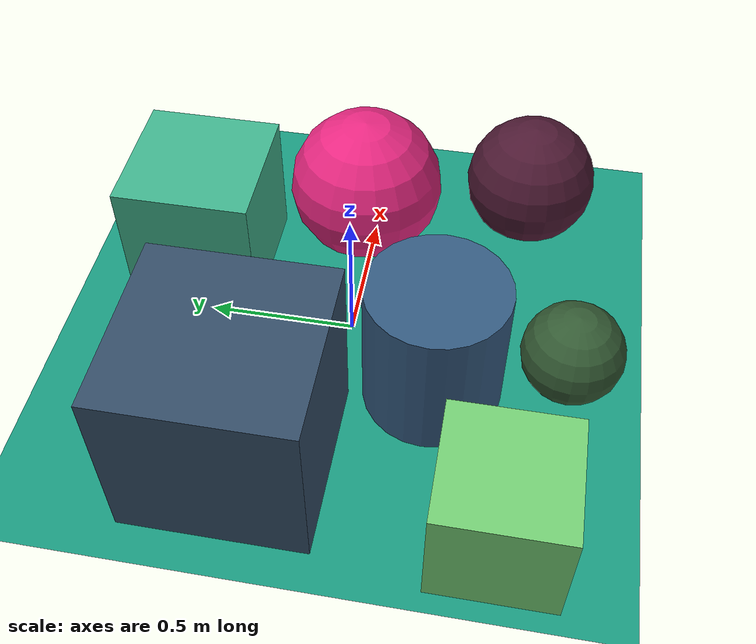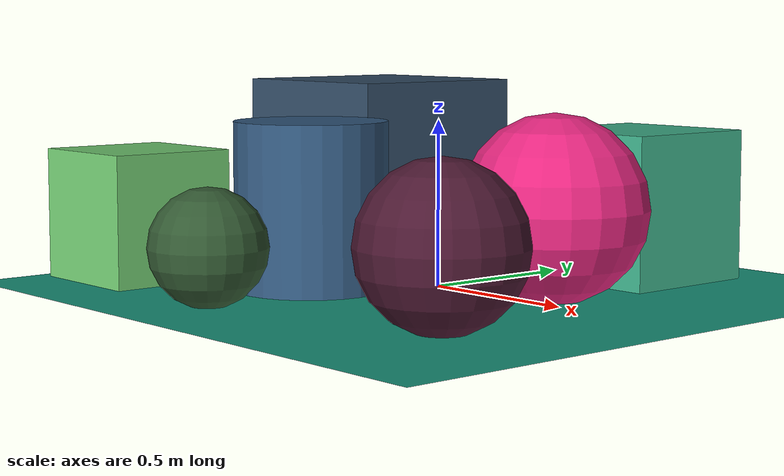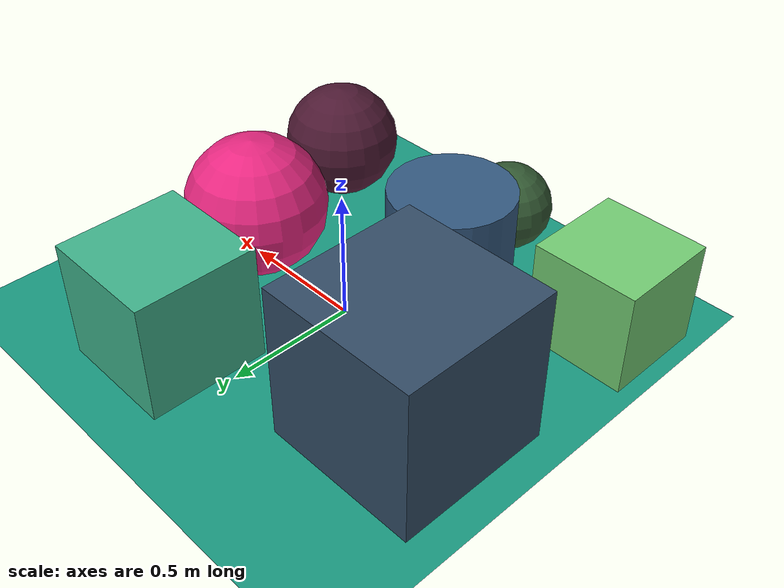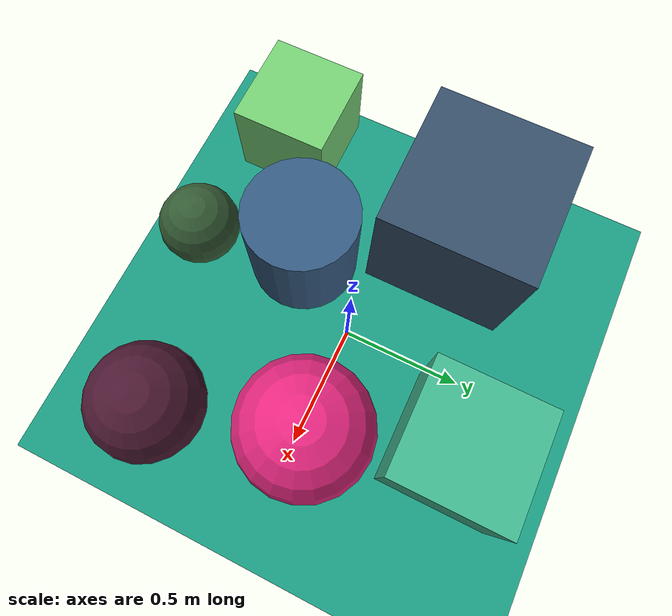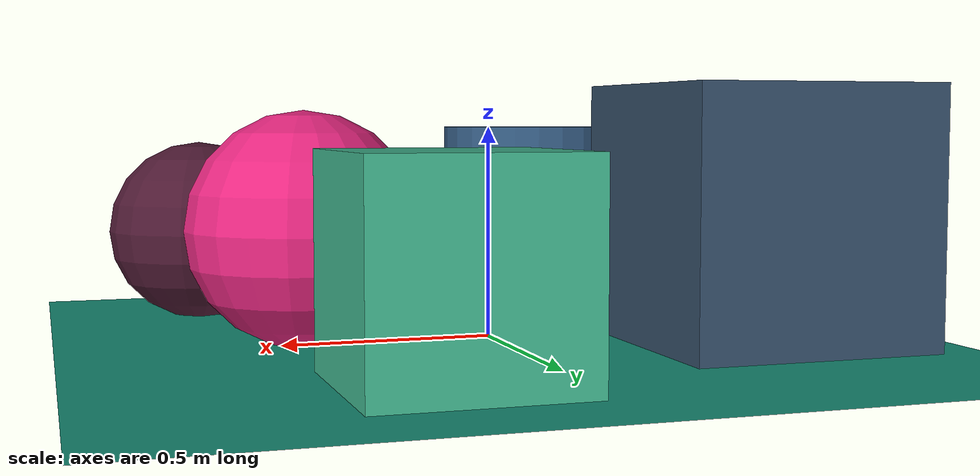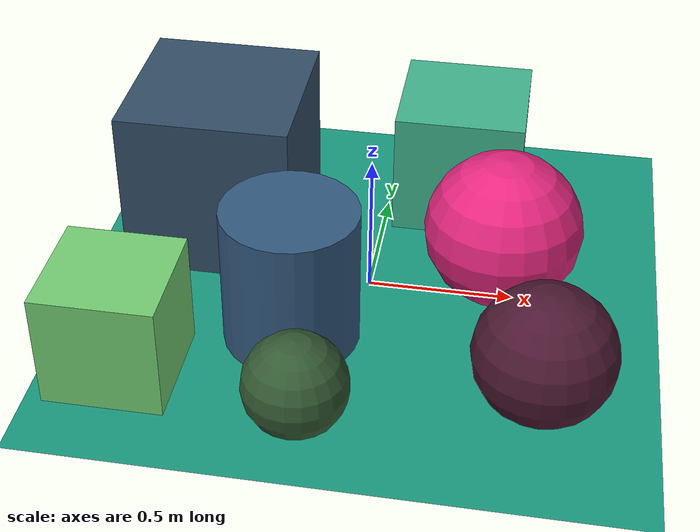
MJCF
<mujoco>
   <asset>
<texture type="skybox" builtin="gradient" rgb1="0.3 0.1 1.0" rgb2="0.7 0.2 1.0" width="256" height="256"/>
<texture name="gradient_0" builtin="gradient" rgb1="0.3 0.3 0.2" rgb2="0.1 0.3 0.6" width="200" height="200"/>
<texture name="checker_1" builtin="checker" type="2d" rgb1="0.1 0.6 0.5" rgb2="0.4 0.8 0.6" width="200" height="200"/>
<texture name="gradient_2" builtin="gradient" rgb1="0.3 0.5 0.3" rgb2="0.1 0.2 0.7" width="200" height="200"/>
<texture name="flat_3" builtin="flat" rgb1="0.3 0.1 0.2" rgb2="0.3 0.1 0.2"  width="200" height="200"/>
<texture name="gradient_4" builtin="gradient" rgb1="0.2 0.7 0.7" rgb2="0.7 0.9 0.2" width="200" height="200"/>
<texture name="gradient_5" builtin="gradient" rgb1="1.0 0.2 0.6" rgb2="0.8 0.1 0.4" width="200" height="200"/>
<texture name="gradient_6" builtin="gradient" rgb1="0.0 0.1 0.4" rgb2="0.4 0.6 0.0" width="200" height="200"/><material name="gradient_0_mat" reflectance="0" texture="gradient_0" texuniform="true"/>
<material name="checker_1_mat" reflectance="0" texrepeat="9 9" texture="checker_1" texuniform="false" />
<material name="gradient_2_mat" reflectance="0" texture="gradient_2" texuniform="true"/>
<material name="flat_3_mat" reflectance="0" texture="flat_3" texuniform="true"/>
<material name="gradient_4_mat" reflectance="0" texture="gradient_4" texuniform="true"/>
<material name="gradient_5_mat" reflectance="0" texture="gradient_5" texuniform="true"/>
<material name="gradient_6_mat" reflectance="0" texture="gradient_6" texuniform="true"/>
   </asset>

   <worldbody>
      <light diffuse=".9 .9 .9" pos="0 0 3" dir="0 0 -1"/>
     <geom type="plane" size="1 1 0.1" rgba="0.1 0.6 0.5 1"/>
<geom type="box" pos="-0.58 0.26 0.3" size="0.3 0.3 0.3" material="gradient_0_mat" />
<geom type="box" pos="0.26 0.58 0.23" size="0.23 0.23 0.23" material="checker_1_mat" />
<geom type="cylinder" pos="-0.22 -0.31 0.25" size="0.23 0.25 0.25" material="gradient_2_mat" />
<geom type="sphere" pos="0.62 -0.55 0.23" size="0.23 0.23 0.23" material="flat_3_mat" />
<geom type="box" pos="-0.74 -0.58 0.2" size="0.2 0.2 0.2" material="gradient_4_mat" />
<geom type="sphere" pos="0.45 0.03 0.27" size="0.27 0.27 0.27" material="gradient_5_mat" />
<geom type="sphere" pos="-0.12 -0.75 0.17" size="0.17 0.17 0.17" material="gradient_6_mat" /><camera euler="60 0 180" fovy="60" name="camera_a" pos="0 -1.5 1"></camera>   </worldbody>
</mujoco>
